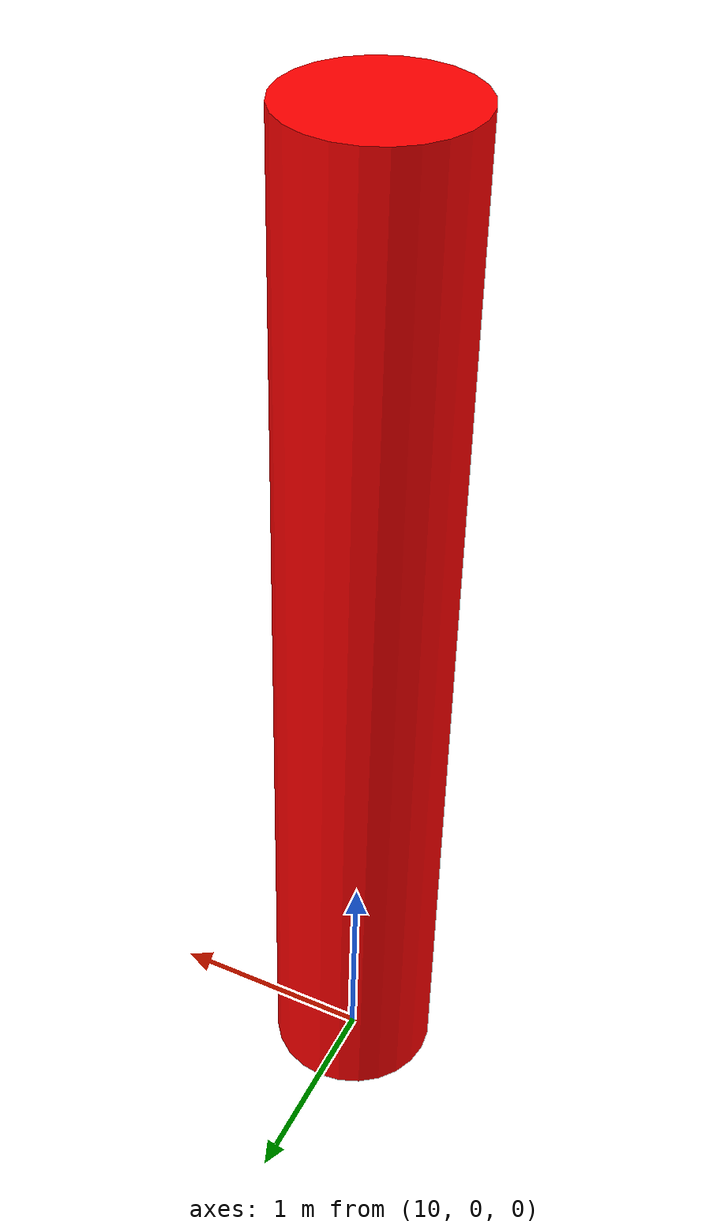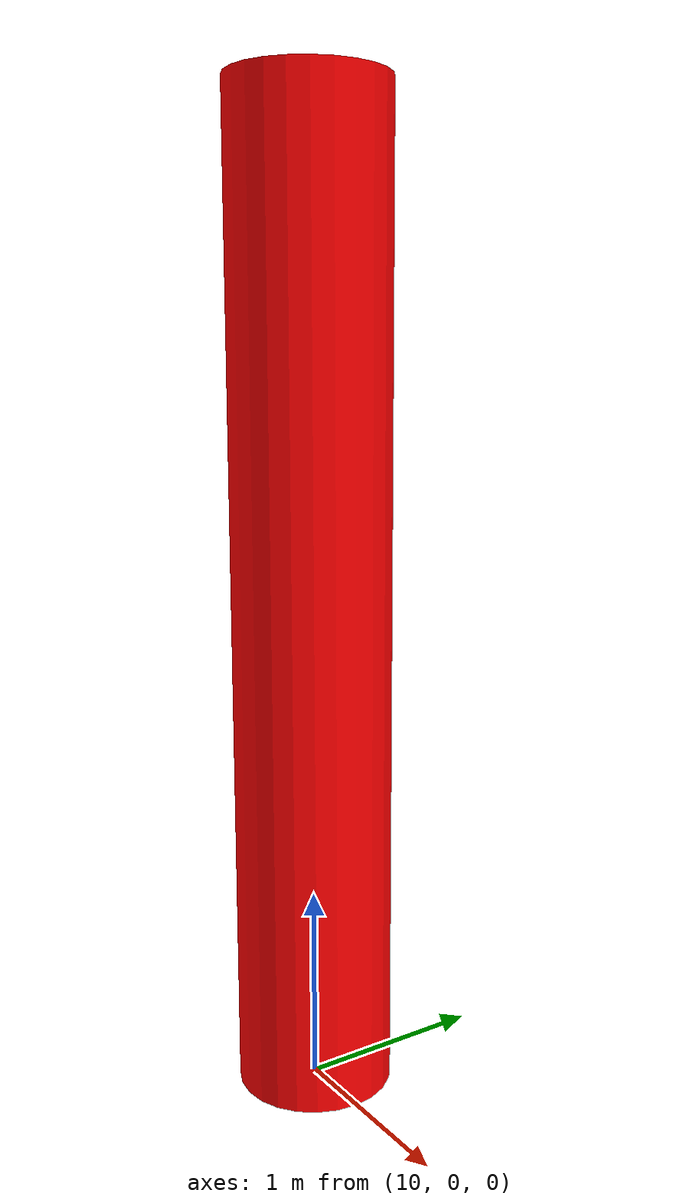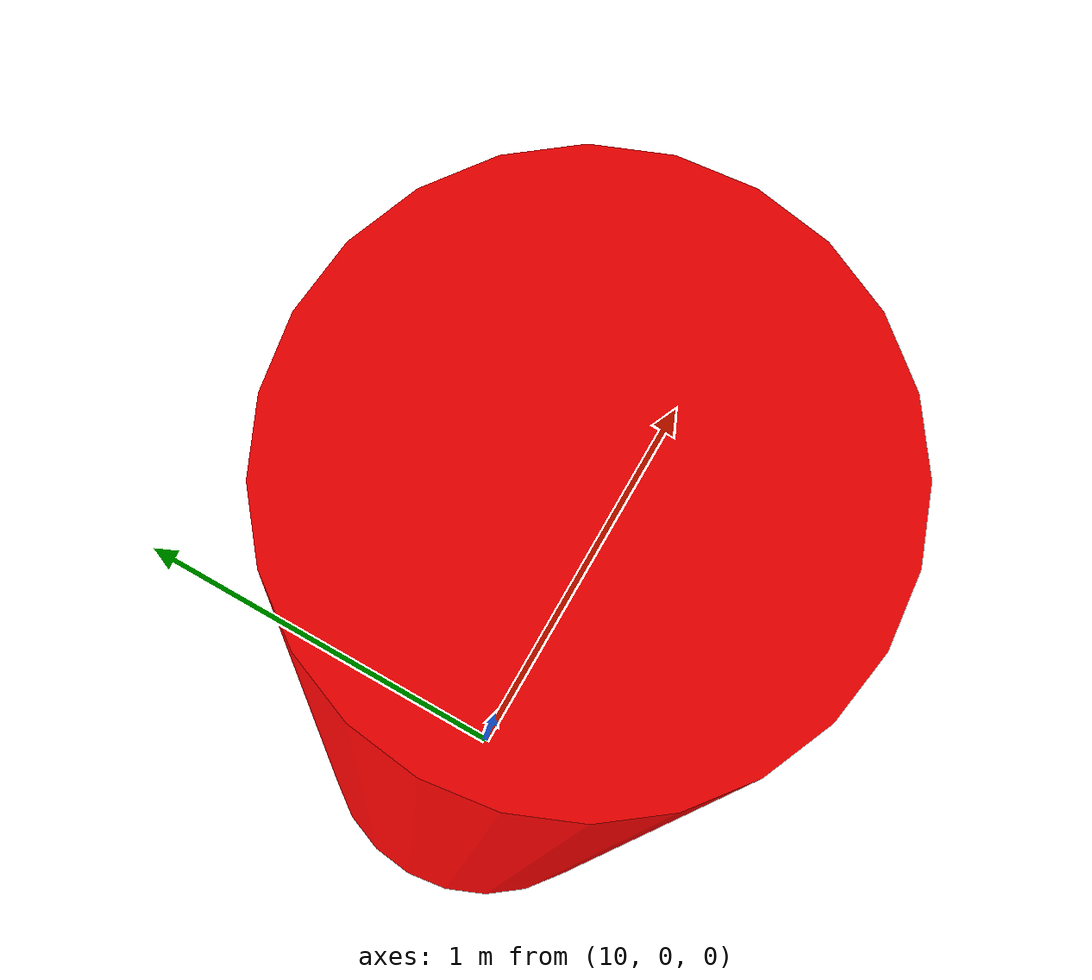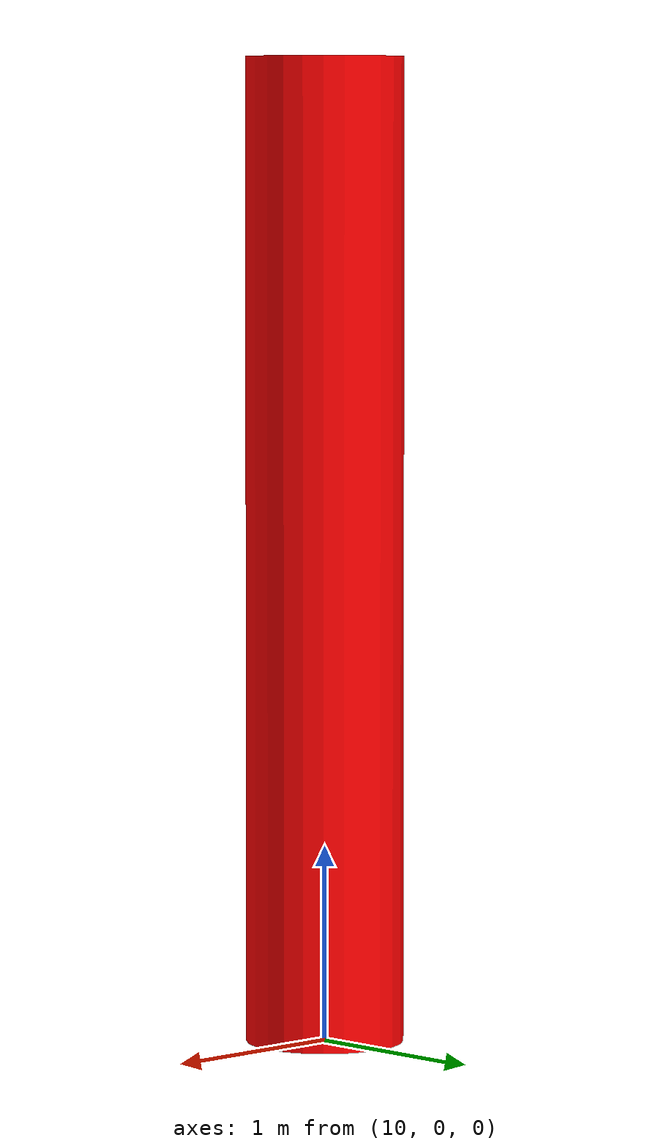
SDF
<?xml version="1.0" ?>
<sdf version="1.6">
  <model name="target_cylinder">

    <!-- Keep it fixed unless you want it to fall -->
    <static>true</static>

    <link name="link">

      <!-- Position: x y z (meters) -->
      <pose>10 0 2.5 0 0 0</pose>
      <!-- 2.5 z because height is 5 m -->

      <!-- Collision -->
      <collision name="collision">
        <geometry>
          <cylinder>
            <radius>0.4</radius>
            <length>5.0</length>
          </cylinder>
        </geometry>
      </collision>

      <!-- Visual -->
      <visual name="visual">
        <geometry>
          <cylinder>
            <radius>0.4</radius>
            <length>5.0</length>
          </cylinder>
        </geometry>
        <material>
          <ambient>1 0 0 1</ambient>   <!-- red -->
          <diffuse>1 0 0 1</diffuse>
        </material>
      </visual>

    </link>
  </model>
</sdf>
